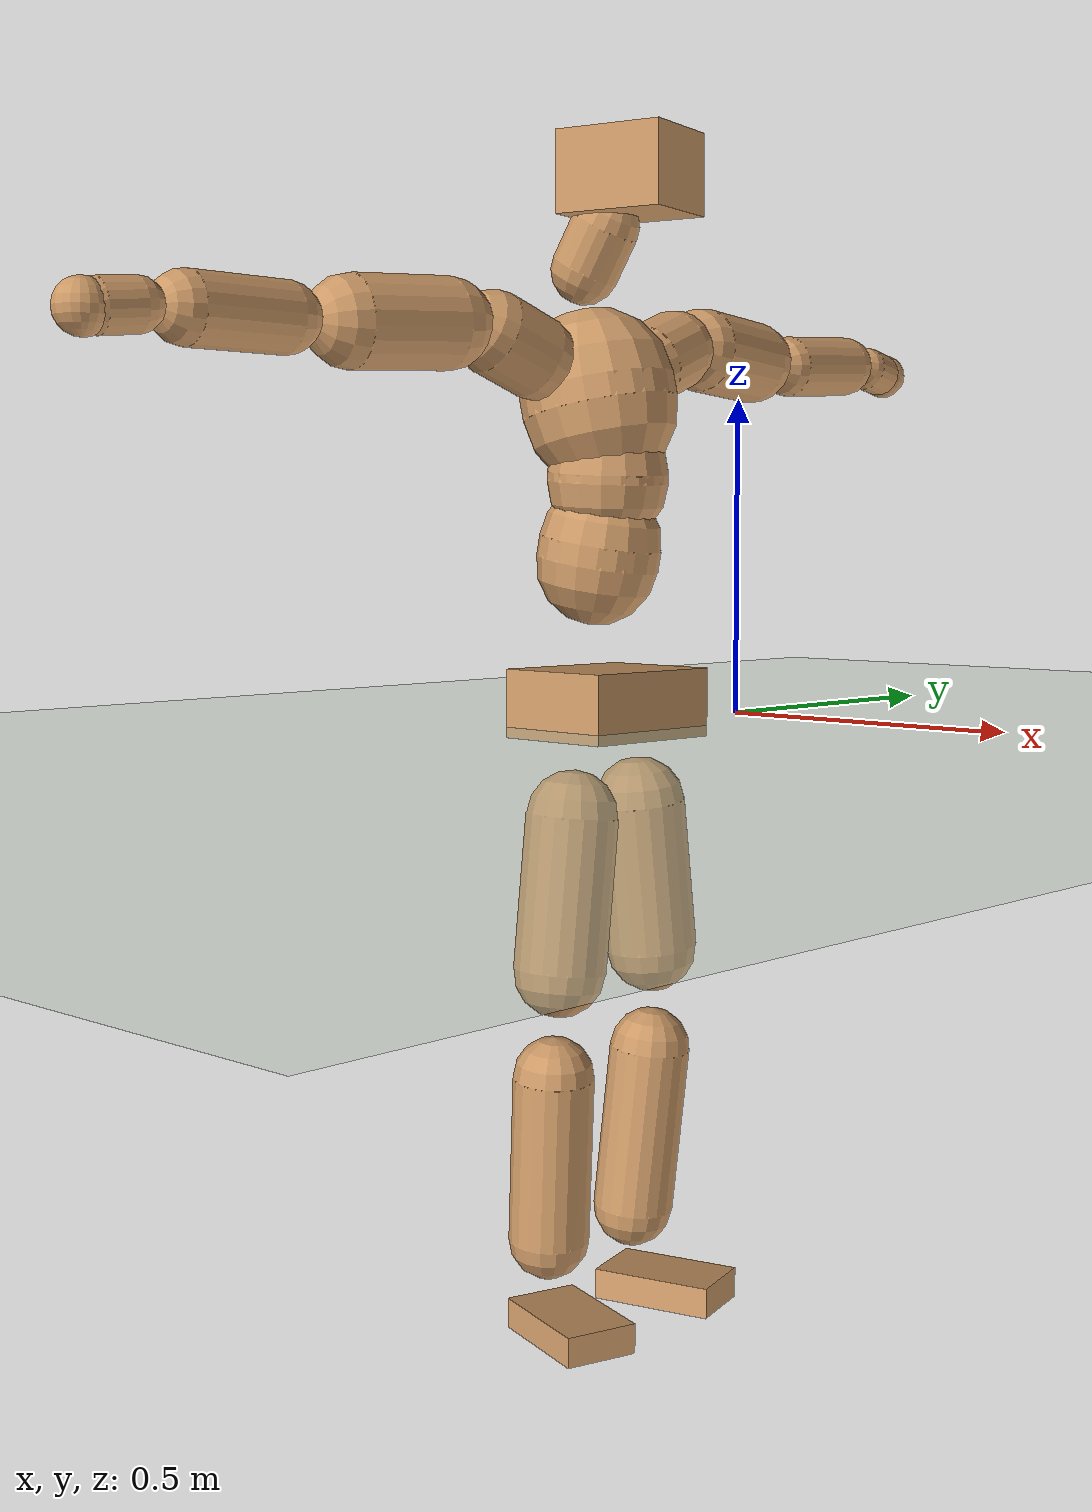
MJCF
<mujoco model="humanoid">
  <compiler coordinate="local" angle="radian"/>
  <default>
    <joint damping="0.0" armature="0.01" stiffness="0.0" limited="true"/>
    <geom conaffinity="1" condim="3" contype="7" margin="0.001" rgba="0.8 0.6 .4 1"/>
  </default>
  <asset>
    <texture type="skybox" builtin="gradient" rgb1=".4 .5 .6" rgb2="0 0 0" width="100" height="100"/>
    <texture builtin="flat" height="1278" mark="cross" markrgb="1 1 1" name="texgeom" random="0.01" rgb1="0.8 0.6 0.4" rgb2="0.8 0.6 0.4" type="cube" width="127"/>
    <texture builtin="checker" height="100" name="texplane" rgb1="0 0 0" rgb2="0.8 0.8 0.8" type="2d" width="100"/>
    <material name="MatPlane" reflectance="0.5" shininess="1" specular="1" texrepeat="60 60" texture="texplane"/>
    <material name="geom" texture="texgeom" texuniform="true"/>
  </asset>
  <worldbody>
    <light cutoff="100" diffuse="1 1 1" dir="-0 0 -1.3" directional="true" exponent="1" pos="0 0 1.3" specular=".1 .1 .1"/>
    <geom conaffinity="1" condim="3" name="floor" pos="0 0 0" rgba="0.8 0.9 0.8 1" size="100 100 .2" type="plane" material="MatPlane"/>
    <body name="Pelvis" pos="-0.0027 -0.2928 0.0415">
      <freejoint name="Pelvis"/>
      <geom type="box" contype="1" conaffinity="1" density="500" pos="-0.0128 0.0005 -0.0082" size="0.0977 0.1177 0.052" quat="0.9998 0.0000 0.0000 -0.0186" name="Pelvis"/>
      <body name="L_Hip" pos="-0.015 0.0673 -0.0898">
        <joint name="L_Hip_x" type="hinge" pos="0 0 0" axis="1 0 0" stiffness="800" damping="80" armature="0.02" range="-180.0000 180.0000"/>
        <joint name="L_Hip_y" type="hinge" pos="0 0 0" axis="0 1 0" stiffness="800" damping="80" armature="0.02" range="-180.0000 180.0000"/>
        <joint name="L_Hip_z" type="hinge" pos="0 0 0" axis="0 0 1" stiffness="800" damping="80" armature="0.02" range="-180.0000 180.0000"/>
        <geom type="capsule" contype="1" conaffinity="1" density="500" fromto="0.0013 0.0083 -0.0768 0.0053 0.0332 -0.3071" size="0.0704" name="L_Hip"/>
        <body name="L_Knee" pos="0.0066 0.0415 -0.3838">
          <joint name="L_Knee_x" type="hinge" pos="0 0 0" axis="1 0 0" stiffness="800" damping="80" armature="0.02" range="-180.0000 180.0000"/>
          <joint name="L_Knee_y" type="hinge" pos="0 0 0" axis="0 1 0" stiffness="800" damping="80" armature="0.02" range="-180.0000 180.0000"/>
          <joint name="L_Knee_z" type="hinge" pos="0 0 0" axis="0 0 1" stiffness="800" damping="80" armature="0.02" range="-180.0000 180.0000"/>
          <geom type="capsule" contype="1" conaffinity="1" density="500" fromto="-0.0086 -0.0034 -0.0869 -0.0343 -0.0136 -0.3476" size="0.0628" name="L_Knee"/>
          <body name="L_Ankle" pos="-0.0428 -0.017 -0.4345">
            <joint name="L_Ankle_x" type="hinge" pos="0 0 0" axis="1 0 0" stiffness="800" damping="80" armature="0.02" range="-180.0000 180.0000"/>
            <joint name="L_Ankle_y" type="hinge" pos="0 0 0" axis="0 1 0" stiffness="800" damping="80" armature="0.02" range="-180.0000 180.0000"/>
            <joint name="L_Ankle_z" type="hinge" pos="0 0 0" axis="0 0 1" stiffness="800" damping="80" armature="0.02" range="-180.0000 180.0000"/>
            <geom type="box" contype="1" conaffinity="1" density="500" pos="0.0654 0.0177 -0.0313" size="0.0965 0.0547 0.0236" quat="0.9913 0.0000 0.0000 0.1318" name="L_Ankle"/>
            <body name="L_Toe" pos="0.1309 0.0354 -0.0626">
              <joint name="L_Toe_x" type="hinge" pos="0 0 0" axis="1 0 0" stiffness="500" damping="50" armature="0.02" range="-180.0000 180.0000"/>
              <joint name="L_Toe_y" type="hinge" pos="0 0 0" axis="0 1 0" stiffness="500" damping="50" armature="0.02" range="-180.0000 180.0000"/>
              <joint name="L_Toe_z" type="hinge" pos="0 0 0" axis="0 0 1" stiffness="500" damping="50" armature="0.02" range="-180.0000 180.0000"/>
              <geom type="box" contype="1" conaffinity="1" density="500" pos="0.0000 0.0000 0.0312" size="0.0011 0.0027 0.0012" quat="0.9906 0.0000 0.0000 0.1369" name="L_Toe"/>
            </body>
          </body>
        </body>
      </body>
      <body name="R_Hip" pos="-0.0118 -0.0686 -0.0968">
        <joint name="R_Hip_x" type="hinge" pos="0 0 0" axis="1 0 0" stiffness="800" damping="80" armature="0.02" range="-180.0000 180.0000"/>
        <joint name="R_Hip_y" type="hinge" pos="0 0 0" axis="0 1 0" stiffness="800" damping="80" armature="0.02" range="-180.0000 180.0000"/>
        <joint name="R_Hip_z" type="hinge" pos="0 0 0" axis="0 0 1" stiffness="800" damping="80" armature="0.02" range="-180.0000 180.0000"/>
        <geom type="capsule" contype="1" conaffinity="1" density="500" fromto="-0.0010 -0.0082 -0.0775 -0.0039 -0.0327 -0.3101" size="0.0699" name="R_Hip"/>
        <body name="R_Knee" pos="-0.0049 -0.0409 -0.3876">
          <joint name="R_Knee_x" type="hinge" pos="0 0 0" axis="1 0 0" stiffness="800" damping="80" armature="0.02" range="-180.0000 180.0000"/>
          <joint name="R_Knee_y" type="hinge" pos="0 0 0" axis="0 1 0" stiffness="800" damping="80" armature="0.02" range="-180.0000 180.0000"/>
          <joint name="R_Knee_z" type="hinge" pos="0 0 0" axis="0 0 1" stiffness="800" damping="80" armature="0.02" range="-180.0000 180.0000"/>
          <geom type="capsule" contype="1" conaffinity="1" density="500" fromto="-0.0078 0.0042 -0.0861 -0.0310 0.0169 -0.3444" size="0.0621" name="R_Knee"/>
          <body name="R_Ankle" pos="-0.0388 0.0211 -0.4305">
            <joint name="R_Ankle_x" type="hinge" pos="0 0 0" axis="1 0 0" stiffness="800" damping="80" armature="0.02" range="-180.0000 180.0000"/>
            <joint name="R_Ankle_y" type="hinge" pos="0 0 0" axis="0 1 0" stiffness="800" damping="80" armature="0.02" range="-180.0000 180.0000"/>
            <joint name="R_Ankle_z" type="hinge" pos="0 0 0" axis="0 0 1" stiffness="800" damping="80" armature="0.02" range="-180.0000 180.0000"/>
            <geom type="box" contype="1" conaffinity="1" density="500" pos="0.0687 -0.0207 -0.0324" size="0.0938 0.0572 0.0229" quat="0.9893 0.0000 0.0000 -0.1457" name="R_Ankle"/>
            <body name="R_Toe" pos="0.1373 -0.0413 -0.0648">
              <joint name="R_Toe_x" type="hinge" pos="0 0 0" axis="1 0 0" stiffness="500" damping="50" armature="0.02" range="-180.0000 180.0000"/>
              <joint name="R_Toe_y" type="hinge" pos="0 0 0" axis="0 1 0" stiffness="500" damping="50" armature="0.02" range="-180.0000 180.0000"/>
              <joint name="R_Toe_z" type="hinge" pos="0 0 0" axis="0 0 1" stiffness="500" damping="50" armature="0.02" range="-180.0000 180.0000"/>
              <geom type="box" contype="1" conaffinity="1" density="500" pos="0.0000 0.0000 0.0329" size="0.0012 0.0027 0.0012" quat="0.9905 0.0000 0.0000 -0.1372" name="R_Toe"/>
            </body>
          </body>
        </body>
      </body>
      <body name="Torso" pos="-0.0502 0.0042 0.1372">
        <joint name="Torso_x" type="hinge" pos="0 0 0" axis="1 0 0" stiffness="1000" damping="100" armature="0.02" range="-180.0000 180.0000"/>
        <joint name="Torso_y" type="hinge" pos="0 0 0" axis="0 1 0" stiffness="1000" damping="100" armature="0.02" range="-180.0000 180.0000"/>
        <joint name="Torso_z" type="hinge" pos="0 0 0" axis="0 0 1" stiffness="1000" damping="100" armature="0.02" range="-180.0000 180.0000"/>
        <geom type="capsule" contype="1" conaffinity="1" density="500" fromto="0.0169 0.0035 0.0960 0.0113 0.0023 0.0640" size="0.0931" name="Torso"/>
        <body name="Spine" pos="0.0282 0.0058 0.16">
          <joint name="Spine_x" type="hinge" pos="0 0 0" axis="1 0 0" stiffness="1000" damping="100" armature="0.02" range="-180.0000 180.0000"/>
          <joint name="Spine_y" type="hinge" pos="0 0 0" axis="0 1 0" stiffness="1000" damping="100" armature="0.02" range="-180.0000 180.0000"/>
          <joint name="Spine_z" type="hinge" pos="0 0 0" axis="0 0 1" stiffness="1000" damping="100" armature="0.02" range="-180.0000 180.0000"/>
          <geom type="capsule" contype="1" conaffinity="1" density="500" fromto="0.0030 -0.0015 0.0401 0.0020 -0.0010 0.0267" size="0.092" name="Spine"/>
          <body name="Chest" pos="0.005 -0.0025 0.0668">
            <joint name="Chest_x" type="hinge" pos="0 0 0" axis="1 0 0" stiffness="1000" damping="100" armature="0.02" range="-180.0000 180.0000"/>
            <joint name="Chest_y" type="hinge" pos="0 0 0" axis="0 1 0" stiffness="1000" damping="100" armature="0.02" range="-180.0000 180.0000"/>
            <joint name="Chest_z" type="hinge" pos="0 0 0" axis="0 0 1" stiffness="1000" damping="100" armature="0.02" range="-180.0000 180.0000"/>
            <geom type="capsule" contype="1" conaffinity="1" density="500" fromto="-0.0194 -0.0056 0.1029 -0.0130 -0.0037 0.0686" size="0.1183" name="Chest"/>
            <body name="Neck" pos="-0.0478 -0.0152 0.2545">
              <joint name="Neck_x" type="hinge" pos="0 0 0" axis="1 0 0" stiffness="500" damping="50" armature="0.02" range="-180.0000 180.0000"/>
              <joint name="Neck_y" type="hinge" pos="0 0 0" axis="0 1 0" stiffness="500" damping="50" armature="0.02" range="-180.0000 180.0000"/>
              <joint name="Neck_z" type="hinge" pos="0 0 0" axis="0 0 1" stiffness="500" damping="50" armature="0.02" range="-180.0000 180.0000"/>
              <geom type="capsule" contype="1" conaffinity="1" density="500" fromto="0.0117 0.0023 0.0206 0.0467 0.0090 0.0825" size="0.0516" name="Neck"/>
              <body name="Head" pos="0.0584 0.0113 0.1032">
                <joint name="Head_x" type="hinge" pos="0 0 0" axis="1 0 0" stiffness="500" damping="50" armature="0.02" range="-180.0000 180.0000"/>
                <joint name="Head_y" type="hinge" pos="0 0 0" axis="0 1 0" stiffness="500" damping="50" armature="0.02" range="-180.0000 180.0000"/>
                <joint name="Head_z" type="hinge" pos="0 0 0" axis="0 0 1" stiffness="500" damping="50" armature="0.02" range="-180.0000 180.0000"/>
                <geom type="box" contype="1" conaffinity="1" density="500" pos="0.0302 0.0066 0.0526" size="0.0861 0.0706 0.0605" quat="0.9942 0.0000 0.0000 0.1080" name="Head"/>
              </body>
            </body>
            <body name="L_Thorax" pos="-0.0203 0.0837 0.1313">
              <joint name="L_Thorax_x" type="hinge" pos="0 0 0" axis="1 0 0" stiffness="500" damping="50" armature="0.02" range="-180.0000 180.0000"/>
              <joint name="L_Thorax_y" type="hinge" pos="0 0 0" axis="0 1 0" stiffness="500" damping="50" armature="0.02" range="-180.0000 180.0000"/>
              <joint name="L_Thorax_z" type="hinge" pos="0 0 0" axis="0 0 1" stiffness="500" damping="50" armature="0.02" range="-180.0000 180.0000"/>
              <geom type="capsule" contype="1" conaffinity="1" density="500" fromto="-0.0053 0.0286 0.0098 -0.0211 0.1144 0.0391" size="0.0629" name="L_Thorax"/>
              <body name="L_Shoulder" pos="-0.0264 0.1429 0.0488">
                <joint name="L_Shoulder_x" type="hinge" pos="0 0 0" axis="1 0 0" stiffness="500" damping="50" armature="0.02" range="-720.0000 720.0000"/>
                <joint name="L_Shoulder_y" type="hinge" pos="0 0 0" axis="0 1 0" stiffness="500" damping="50" armature="0.02" range="-720.0000 720.0000"/>
                <joint name="L_Shoulder_z" type="hinge" pos="0 0 0" axis="0 0 1" stiffness="500" damping="50" armature="0.02" range="-720.0000 720.0000"/>
                <geom type="capsule" contype="1" conaffinity="1" density="500" fromto="-0.0058 0.0510 -0.0032 -0.0230 0.2041 -0.0129" size="0.0662" name="L_Shoulder"/>
                <body name="L_Elbow" pos="-0.0288 0.2552 -0.0161">
                  <joint name="L_Elbow_x" type="hinge" pos="0 0 0" axis="1 0 0" stiffness="500" damping="50" armature="0.02" range="-720.0000 720.0000"/>
                  <joint name="L_Elbow_y" type="hinge" pos="0 0 0" axis="0 1 0" stiffness="500" damping="50" armature="0.02" range="-720.0000 720.0000"/>
                  <joint name="L_Elbow_z" type="hinge" pos="0 0 0" axis="0 0 1" stiffness="500" damping="50" armature="0.02" range="-720.0000 720.0000"/>
                  <geom type="capsule" contype="1" conaffinity="1" density="500" fromto="-0.0004 0.0539 0.0032 -0.0014 0.2157 0.0127" size="0.0503" name="L_Elbow"/>
                  <body name="L_Wrist" pos="-0.0018 0.2697 0.0159">
                    <joint name="L_Wrist_x" type="hinge" pos="0 0 0" axis="1 0 0" stiffness="300" damping="30" armature="0.02" range="-180.0000 180.0000"/>
                    <joint name="L_Wrist_y" type="hinge" pos="0 0 0" axis="0 1 0" stiffness="300" damping="30" armature="0.02" range="-180.0000 180.0000"/>
                    <joint name="L_Wrist_z" type="hinge" pos="0 0 0" axis="0 0 1" stiffness="300" damping="30" armature="0.02" range="-180.0000 180.0000"/>
                    <geom type="capsule" contype="1" conaffinity="1" density="500" fromto="-0.0031 0.0182 -0.0023 -0.0126 0.0729 -0.0094" size="0.0369" name="L_Wrist"/>
                    <body name="L_Hand" pos="-0.0157 0.0911 -0.0117">
                      <joint name="L_Hand_x" type="hinge" pos="0 0 0" axis="1 0 0" stiffness="300" damping="30" armature="0.02" range="-180.0000 180.0000"/>
                      <joint name="L_Hand_y" type="hinge" pos="0 0 0" axis="0 1 0" stiffness="300" damping="30" armature="0.02" range="-180.0000 180.0000"/>
                      <joint name="L_Hand_z" type="hinge" pos="0 0 0" axis="0 0 1" stiffness="300" damping="30" armature="0.02" range="-180.0000 180.0000"/>
                      <geom type="sphere" contype="1" conaffinity="1" density="500" size="0.0378" pos="0.0000 0.0000 0.0000" name="L_Hand"/>
                    </body>
                  </body>
                </body>
              </body>
            </body>
            <body name="R_Thorax" pos="-0.029 -0.0965 0.1286">
              <joint name="R_Thorax_x" type="hinge" pos="0 0 0" axis="1 0 0" stiffness="500" damping="50" armature="0.02" range="-180.0000 180.0000"/>
              <joint name="R_Thorax_y" type="hinge" pos="0 0 0" axis="0 1 0" stiffness="500" damping="50" armature="0.02" range="-180.0000 180.0000"/>
              <joint name="R_Thorax_z" type="hinge" pos="0 0 0" axis="0 0 1" stiffness="500" damping="50" armature="0.02" range="-180.0000 180.0000"/>
              <geom type="capsule" contype="1" conaffinity="1" density="500" fromto="-0.0029 -0.0264 0.0104 -0.0114 -0.1055 0.0415" size="0.0622" name="R_Thorax"/>
              <body name="R_Shoulder" pos="-0.0143 -0.1319 0.0519">
                <joint name="R_Shoulder_x" type="hinge" pos="0 0 0" axis="1 0 0" stiffness="500" damping="50" armature="0.02" range="-720.0000 720.0000"/>
                <joint name="R_Shoulder_y" type="hinge" pos="0 0 0" axis="0 1 0" stiffness="500" damping="50" armature="0.02" range="-720.0000 720.0000"/>
                <joint name="R_Shoulder_z" type="hinge" pos="0 0 0" axis="0 0 1" stiffness="500" damping="50" armature="0.02" range="-720.0000 720.0000"/>
                <geom type="capsule" contype="1" conaffinity="1" density="500" fromto="-0.0081 -0.0528 -0.0023 -0.0325 -0.2111 -0.0094" size="0.0663" name="R_Shoulder"/>
                <body name="R_Elbow" pos="-0.0406 -0.2638 -0.0117">
                  <joint name="R_Elbow_x" type="hinge" pos="0 0 0" axis="1 0 0" stiffness="500" damping="50" armature="0.02" range="-720.0000 720.0000"/>
                  <joint name="R_Elbow_y" type="hinge" pos="0 0 0" axis="0 1 0" stiffness="500" damping="50" armature="0.02" range="-720.0000 720.0000"/>
                  <joint name="R_Elbow_z" type="hinge" pos="0 0 0" axis="0 0 1" stiffness="500" damping="50" armature="0.02" range="-720.0000 720.0000"/>
                  <geom type="capsule" contype="1" conaffinity="1" density="500" fromto="-0.0005 -0.0534 0.0002 -0.0021 -0.2137 0.0007" size="0.0503" name="R_Elbow"/>
                  <body name="R_Wrist" pos="-0.0027 -0.2672 0.0009">
                    <joint name="R_Wrist_x" type="hinge" pos="0 0 0" axis="1 0 0" stiffness="300" damping="30" armature="0.02" range="-180.0000 180.0000"/>
                    <joint name="R_Wrist_y" type="hinge" pos="0 0 0" axis="0 1 0" stiffness="300" damping="30" armature="0.02" range="-180.0000 180.0000"/>
                    <joint name="R_Wrist_z" type="hinge" pos="0 0 0" axis="0 0 1" stiffness="300" damping="30" armature="0.02" range="-180.0000 180.0000"/>
                    <geom type="capsule" contype="1" conaffinity="1" density="500" fromto="-0.0020 -0.0186 -0.0019 -0.0080 -0.0743 -0.0074" size="0.0372" name="R_Wrist"/>
                    <body name="R_Hand" pos="-0.01 -0.0929 -0.0093">
                      <joint name="R_Hand_x" type="hinge" pos="0 0 0" axis="1 0 0" stiffness="300" damping="30" armature="0.02" range="-180.0000 180.0000"/>
                      <joint name="R_Hand_y" type="hinge" pos="0 0 0" axis="0 1 0" stiffness="300" damping="30" armature="0.02" range="-180.0000 180.0000"/>
                      <joint name="R_Hand_z" type="hinge" pos="0 0 0" axis="0 0 1" stiffness="300" damping="30" armature="0.02" range="-180.0000 180.0000"/>
                      <geom type="sphere" contype="1" conaffinity="1" density="500" size="0.0380" pos="0.0000 0.0000 0.0000" name="R_Hand"/>
                    </body>
                  </body>
                </body>
              </body>
            </body>
          </body>
        </body>
      </body>
    </body>
  </worldbody>
  <actuator>
    <motor name="L_Hip_x" joint="L_Hip_x" gear="500"/>
    <motor name="L_Hip_y" joint="L_Hip_y" gear="500"/>
    <motor name="L_Hip_z" joint="L_Hip_z" gear="500"/>
    <motor name="L_Knee_x" joint="L_Knee_x" gear="500"/>
    <motor name="L_Knee_y" joint="L_Knee_y" gear="500"/>
    <motor name="L_Knee_z" joint="L_Knee_z" gear="500"/>
    <motor name="L_Ankle_x" joint="L_Ankle_x" gear="500"/>
    <motor name="L_Ankle_y" joint="L_Ankle_y" gear="500"/>
    <motor name="L_Ankle_z" joint="L_Ankle_z" gear="500"/>
    <motor name="L_Toe_x" joint="L_Toe_x" gear="500"/>
    <motor name="L_Toe_y" joint="L_Toe_y" gear="500"/>
    <motor name="L_Toe_z" joint="L_Toe_z" gear="500"/>
    <motor name="R_Hip_x" joint="R_Hip_x" gear="500"/>
    <motor name="R_Hip_y" joint="R_Hip_y" gear="500"/>
    <motor name="R_Hip_z" joint="R_Hip_z" gear="500"/>
    <motor name="R_Knee_x" joint="R_Knee_x" gear="500"/>
    <motor name="R_Knee_y" joint="R_Knee_y" gear="500"/>
    <motor name="R_Knee_z" joint="R_Knee_z" gear="500"/>
    <motor name="R_Ankle_x" joint="R_Ankle_x" gear="500"/>
    <motor name="R_Ankle_y" joint="R_Ankle_y" gear="500"/>
    <motor name="R_Ankle_z" joint="R_Ankle_z" gear="500"/>
    <motor name="R_Toe_x" joint="R_Toe_x" gear="500"/>
    <motor name="R_Toe_y" joint="R_Toe_y" gear="500"/>
    <motor name="R_Toe_z" joint="R_Toe_z" gear="500"/>
    <motor name="Torso_x" joint="Torso_x" gear="500"/>
    <motor name="Torso_y" joint="Torso_y" gear="500"/>
    <motor name="Torso_z" joint="Torso_z" gear="500"/>
    <motor name="Spine_x" joint="Spine_x" gear="500"/>
    <motor name="Spine_y" joint="Spine_y" gear="500"/>
    <motor name="Spine_z" joint="Spine_z" gear="500"/>
    <motor name="Chest_x" joint="Chest_x" gear="500"/>
    <motor name="Chest_y" joint="Chest_y" gear="500"/>
    <motor name="Chest_z" joint="Chest_z" gear="500"/>
    <motor name="Neck_x" joint="Neck_x" gear="500"/>
    <motor name="Neck_y" joint="Neck_y" gear="500"/>
    <motor name="Neck_z" joint="Neck_z" gear="500"/>
    <motor name="Head_x" joint="Head_x" gear="500"/>
    <motor name="Head_y" joint="Head_y" gear="500"/>
    <motor name="Head_z" joint="Head_z" gear="500"/>
    <motor name="L_Thorax_x" joint="L_Thorax_x" gear="500"/>
    <motor name="L_Thorax_y" joint="L_Thorax_y" gear="500"/>
    <motor name="L_Thorax_z" joint="L_Thorax_z" gear="500"/>
    <motor name="L_Shoulder_x" joint="L_Shoulder_x" gear="500"/>
    <motor name="L_Shoulder_y" joint="L_Shoulder_y" gear="500"/>
    <motor name="L_Shoulder_z" joint="L_Shoulder_z" gear="500"/>
    <motor name="L_Elbow_x" joint="L_Elbow_x" gear="500"/>
    <motor name="L_Elbow_y" joint="L_Elbow_y" gear="500"/>
    <motor name="L_Elbow_z" joint="L_Elbow_z" gear="500"/>
    <motor name="L_Wrist_x" joint="L_Wrist_x" gear="500"/>
    <motor name="L_Wrist_y" joint="L_Wrist_y" gear="500"/>
    <motor name="L_Wrist_z" joint="L_Wrist_z" gear="500"/>
    <motor name="L_Hand_x" joint="L_Hand_x" gear="500"/>
    <motor name="L_Hand_y" joint="L_Hand_y" gear="500"/>
    <motor name="L_Hand_z" joint="L_Hand_z" gear="500"/>
    <motor name="R_Thorax_x" joint="R_Thorax_x" gear="500"/>
    <motor name="R_Thorax_y" joint="R_Thorax_y" gear="500"/>
    <motor name="R_Thorax_z" joint="R_Thorax_z" gear="500"/>
    <motor name="R_Shoulder_x" joint="R_Shoulder_x" gear="500"/>
    <motor name="R_Shoulder_y" joint="R_Shoulder_y" gear="500"/>
    <motor name="R_Shoulder_z" joint="R_Shoulder_z" gear="500"/>
    <motor name="R_Elbow_x" joint="R_Elbow_x" gear="500"/>
    <motor name="R_Elbow_y" joint="R_Elbow_y" gear="500"/>
    <motor name="R_Elbow_z" joint="R_Elbow_z" gear="500"/>
    <motor name="R_Wrist_x" joint="R_Wrist_x" gear="500"/>
    <motor name="R_Wrist_y" joint="R_Wrist_y" gear="500"/>
    <motor name="R_Wrist_z" joint="R_Wrist_z" gear="500"/>
    <motor name="R_Hand_x" joint="R_Hand_x" gear="500"/>
    <motor name="R_Hand_y" joint="R_Hand_y" gear="500"/>
    <motor name="R_Hand_z" joint="R_Hand_z" gear="500"/>
  </actuator>
  <contact>
    <exclude body1="Torso" body2="Chest"/>
    <exclude body1="Head" body2="Chest"/>
    <exclude body1="R_Knee" body2="R_Toe"/>
    <exclude body1="R_Knee" body2="L_Ankle"/>
    <exclude body1="R_Knee" body2="L_Toe"/>
    <exclude body1="L_Knee" body2="L_Toe"/>
    <exclude body1="L_Knee" body2="R_Ankle"/>
    <exclude body1="L_Knee" body2="R_Toe"/>
    <exclude body1="L_Shoulder" body2="Chest"/>
    <exclude body1="R_Shoulder" body2="Chest"/>
  </contact>
  <sensor/>
  <size njmax="700" nconmax="700"/>
</mujoco>
